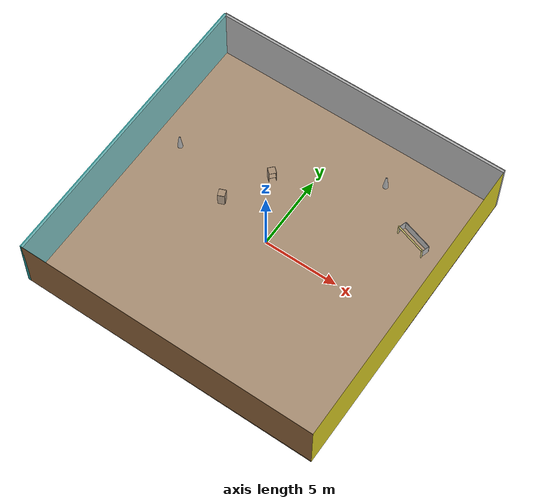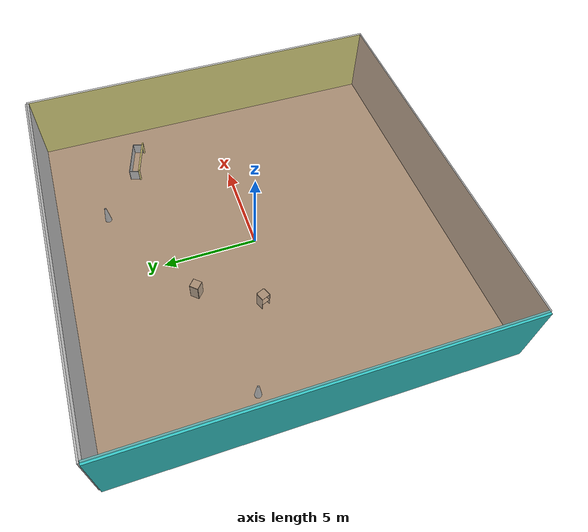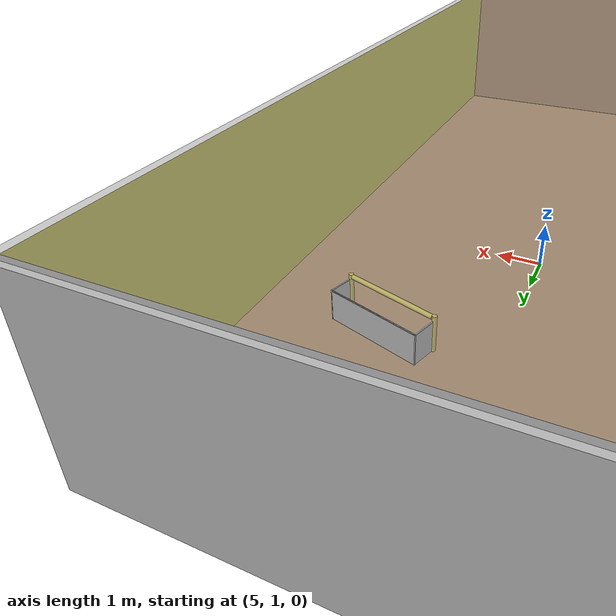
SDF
<sdf version="1.4">
 <world name="default">
  <physics type="ode">
   <max_step_size>0.001</max_step_size>
   <real_time_factor>1</real_time_factor>
   <real_time_update_rate>1000</real_time_update_rate>
   <gravity>0 0 -9.8</gravity>
  </physics>
  <scene><ambient>0.4 0.4 0.4 1</ambient><background>0.7 0.7 0.7 1</background><shadows>1</shadows></scene>
  <model name="Surrounding">
   <static>1</static>
   <link name="Ceiling">
    <collision name="Ceiling_Collision"><geometry><box><size>20 20 0.1</size></box></geometry></collision>
    <visual name="Ceiling_Visual">
     <geometry><box><size>20 20 0.1</size></box></geometry>
     <material>
      <script><uri>file://media/materials/scripts/gazebo.material</uri><name>Gazebo/GreyTransparent</name></script>
     </material>
    </visual>
    <pose>0 0 4.05 0 0 0</pose>
   </link>
   <link name="Wall_South">
    <collision name="Wall_South_Collision">
     <geometry><box><size>20 0 4</size></box></geometry>
     <pose>0 0 2 0 -0 0</pose>
    </collision>
    <visual name="Wall_South_Visual">
     <pose>0 0 2 0 -0 0</pose>
     <geometry><box><size>20 0 4</size></box></geometry>
     <material>
      <script><uri>file://media/materials/scripts/gazebo.material</uri><name>Gazebo/WoodFloor</name></script>
     </material>
    </visual>
    <velocity_decay><linear>0</linear><angular>0</angular></velocity_decay>
    <pose>0 -10 0 0 -0 0</pose>
   </link>
   <link name="Wall_East">
    <collision name="Wall_21_Collision">
     <geometry><box><size>20 0 4</size></box></geometry>
     <pose>0 0 2 0 -0 0</pose>
    </collision>
    <visual name="Wall_21_Visual">
     <pose>0 0 2 0 -0 0</pose>
     <geometry><box><size>20 0 4</size></box></geometry>
     <material>
      <script><uri>file://media/materials/scripts/gazebo.material</uri><name>Gazebo/Yellow</name></script>
     </material>
    </visual>
    <velocity_decay><linear>0</linear><angular>0</angular></velocity_decay>
    <pose>10 0 0 0 -0 1.5708</pose>
   </link>
   <link name="Wall_North">
    <collision name="Wall_22_Collision">
     <geometry><box><size>20 0.2 4</size></box></geometry>
     <pose>0 0 2 0 -0 0</pose>
    </collision>
    <visual name="Wall_22_Visual">
     <pose>0 0 2 0 -0 0</pose>
     <geometry><box><size>20 0.2 4</size></box></geometry>
     <material>
      <script><uri>file://media/materials/scripts/gazebo.material</uri><name>Gazebo/JointAnchor</name></script>
     </material>
    </visual>
    <velocity_decay><linear>0</linear><angular>0</angular></velocity_decay>
    <pose>0 10 0 0 -0 0</pose>
   </link>
   <link name="Wall_West">
    <collision name="Wall_23_Collision">
     <geometry><box><size>20 0.2 4</size></box></geometry>
     <pose>0 0 2 0 -0 0</pose>
    </collision>
    <visual name="Wall_23_Visual">
     <pose>0 0 2 0 -0 0</pose>
     <geometry><box><size>20 0.2 4</size></box></geometry>
     <material>
      <script>
       <uri>file://media/materials/scripts/gazebo.material</uri>
       <name>Gazebo/TurquoiseGlowOutline</name>
      </script>
     </material>
    </visual>
    <velocity_decay><linear>0</linear><angular>0</angular></velocity_decay>
    <pose>-10 0 0 0 0 -1.5708</pose>
   </link>
   <link name="Ground_link">
    <collision name="collision">
     <pose>0 0 .05 0 -0 0</pose>
     <geometry><box><size>20 20 0.1</size></box></geometry>
    </collision>
    <visual name="visual">
     <pose>0 0 .05 0 -0 0</pose>
     <geometry><box><size>20 20 0.1</size></box></geometry>
     <material>
      <script><uri>file://media/materials/scripts/gazebo.material</uri><name>Gazebo/Wood</name></script>
     </material>
    </visual>
   </link>
   <static>1</static>
  </model>
  <spherical_coordinates>
   <surface_model>EARTH_WGS84</surface_model>
   <latitude_deg>0</latitude_deg>
   <longitude_deg>0</longitude_deg>
   <elevation>0</elevation>
   <heading_deg>0</heading_deg>
  </spherical_coordinates>
  <light name="lightball_0" type="diffuse">
   <diffuse>0.8 0.8 0.8 1</diffuse>
   <specular>0.2 0.2 0.2 1</specular>
   <attenuation>
    <range>100</range>
    <constant>0.7</constant>
    <linear>0.01</linear>
    <quadratic>0.001</quadratic>
   </attenuation>
   <direction>-0.5 0.1 -0.9</direction>
   <pose>1.50487340277 -1.09994284031 2.97784608189 0 0 0</pose>
  </light>
  <light name="lightball_1" type="diffuse">
   <diffuse>0.8 0.8 0.8 1</diffuse>
   <specular>0.2 0.2 0.2 1</specular>
   <attenuation>
    <range>100</range>
    <constant>0.7</constant>
    <linear>0.01</linear>
    <quadratic>0.001</quadratic>
   </attenuation>
   <direction>-0.5 0.1 -0.9</direction>
   <pose>-0.0553698381391 -2.66653593388 0.717928023535 0 0 0</pose>
  </light>
  <light name="lightball_2" type="diffuse">
   <diffuse>0.8 0.8 0.8 1</diffuse>
   <specular>0.2 0.2 0.2 1</specular>
   <attenuation>
    <range>100</range>
    <constant>0.7</constant>
    <linear>0.01</linear>
    <quadratic>0.001</quadratic>
   </attenuation>
   <direction>-0.5 0.1 -0.9</direction>
   <pose>-7.22841221488 8.11562173505 1.09111784978 0 0 0</pose>
  </light>
  <light name="lightball_3" type="diffuse">
   <diffuse>0.8 0.8 0.8 1</diffuse>
   <specular>0.2 0.2 0.2 1</specular>
   <attenuation>
    <range>100</range>
    <constant>0.7</constant>
    <linear>0.01</linear>
    <quadratic>0.001</quadratic>
   </attenuation>
   <direction>-0.5 0.1 -0.9</direction>
   <pose>-5.51264891173 -3.25590702105 1.19880472319 0 0 0</pose>
  </light>
  <light name="lightball_4" type="diffuse">
   <diffuse>0.8 0.8 0.8 1</diffuse>
   <specular>0.2 0.2 0.2 1</specular>
   <attenuation>
    <range>100</range>
    <constant>0.7</constant>
    <linear>0.01</linear>
    <quadratic>0.001</quadratic>
   </attenuation>
   <direction>-0.5 0.1 -0.9</direction>
   <pose>-0.996026066315 0.337654251198 0.66385181736 0 0 0</pose>
  </light>
  <light name="lightball_5" type="diffuse">
   <diffuse>0.8 0.8 0.8 1</diffuse>
   <specular>0.2 0.2 0.2 1</specular>
   <attenuation>
    <range>100</range>
    <constant>0.7</constant>
    <linear>0.01</linear>
    <quadratic>0.001</quadratic>
   </attenuation>
   <direction>-0.5 0.1 -0.9</direction>
   <pose>8.31234889044 -1.06709637957 2.22816157509 0 0 0</pose>
  </light>
  <light name="lightball_6" type="diffuse">
   <diffuse>0.8 0.8 0.8 1</diffuse>
   <specular>0.2 0.2 0.2 1</specular>
   <attenuation>
    <range>100</range>
    <constant>0.7</constant>
    <linear>0.01</linear>
    <quadratic>0.001</quadratic>
   </attenuation>
   <direction>-0.5 0.1 -0.9</direction>
   <pose>7.61458536219 -2.99805698263 1.65993454454 0 0 0</pose>
  </light>
  <light name="lightball_7" type="diffuse">
   <diffuse>0.8 0.8 0.8 1</diffuse>
   <specular>0.2 0.2 0.2 1</specular>
   <attenuation>
    <range>100</range>
    <constant>0.7</constant>
    <linear>0.01</linear>
    <quadratic>0.001</quadratic>
   </attenuation>
   <direction>-0.5 0.1 -0.9</direction>
   <pose>1.44757660384 8.86650789856 3.47581139119 0 0 0</pose>
  </light>
  <light name="lightball_8" type="diffuse">
   <diffuse>0.8 0.8 0.8 1</diffuse>
   <specular>0.2 0.2 0.2 1</specular>
   <attenuation>
    <range>100</range>
    <constant>0.7</constant>
    <linear>0.01</linear>
    <quadratic>0.001</quadratic>
   </attenuation>
   <direction>-0.5 0.1 -0.9</direction>
   <pose>7.84801113407 -5.30287219783 3.70530010397 0 0 0</pose>
  </light>
  <light name="lightball_9" type="diffuse">
   <diffuse>0.8 0.8 0.8 1</diffuse>
   <specular>0.2 0.2 0.2 1</specular>
   <attenuation>
    <range>100</range>
    <constant>0.7</constant>
    <linear>0.01</linear>
    <quadratic>0.001</quadratic>
   </attenuation>
   <direction>-0.5 0.1 -0.9</direction>
   <pose>-9.90190483003 -0.356578401182 3.50128895156 0 0 0</pose>
  </light>
  <light name="lightball_10" type="diffuse">
   <diffuse>0.8 0.8 0.8 1</diffuse>
   <specular>0.2 0.2 0.2 1</specular>
   <attenuation>
    <range>100</range>
    <constant>0.7</constant>
    <linear>0.01</linear>
    <quadratic>0.001</quadratic>
   </attenuation>
   <direction>-0.5 0.1 -0.9</direction>
   <pose>-9.32251628436 6.42866413903 3.14168713796 0 0 0</pose>
  </light>
  <light name="lightball_11" type="diffuse">
   <diffuse>0.8 0.8 0.8 1</diffuse>
   <specular>0.2 0.2 0.2 1</specular>
   <attenuation>
    <range>100</range>
    <constant>0.7</constant>
    <linear>0.01</linear>
    <quadratic>0.001</quadratic>
   </attenuation>
   <direction>-0.5 0.1 -0.9</direction>
   <pose>-8.66449557168 4.43045701101 1.62857272223 0 0 0</pose>
  </light>
  <include>
   <uri>model://construction_cone</uri>
   <pose>-8.19244117364 2.51384385214 0 0 0 2.82570453123</pose>
  </include>
  <include><uri>model://cabinet</uri><pose>-3.80181365907 0.813258767987 0 0 0 0.388141526069</pose></include>
  <include><uri>model://cabinet</uri><pose>-2.21728794396 3.81962083086 0 0 0 2.41141837968</pose></include>
  <include>
   <uri>model://construction_cone</uri>
   <pose>3.79464812612 7.28490005894 0 0 0 2.93184209249</pose>
  </include>
  <include>
   <uri>model://robocup_3Dsim_goal</uri>
   <pose>7.15438696829 4.68398038607 0 0 0 1.27062314699</pose>
  </include>
 </world>
</sdf>

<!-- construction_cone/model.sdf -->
<sdf version="1.5">
  <model name="Construction Cone">
    <link name="link">
      <collision name="collision">
        <geometry>
          <mesh>
            <scale>10 10 10</scale>
            <uri>file://isr-testbed/construction_cone/meshes/construction_cone.dae</uri>
          </mesh>
        </geometry>
      </collision>
      <visual name="visual">
        <geometry>
          <mesh>
            <scale>10 10 10</scale>
            <uri>file://isr-testbed/construction_cone/meshes/construction_cone.dae</uri>
          </mesh>
        </geometry>
      </visual>
    </link>
  </model>
</sdf>

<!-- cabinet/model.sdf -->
<sdf version="1.5">
  <model name="cabinet">
    <static>true</static>
    <link name="cabinet_bottom_plate">
      <inertial>
        <pose>0 0 -1 0 0 0</pose>
        <inertia>
          <ixx>2.050000</ixx>
          <ixy>0</ixy>
          <ixz>0</ixz>
          <iyy>2.050000</iyy>
          <iyz>0</iyz>
          <izz>2.050000</izz>
        </inertia>
        <mass>25.000000</mass>
      </inertial>
      <collision name="cabinet_bottom_plate_geom">
        <pose>0 0 0.010000 0 0 0</pose>
        <geometry>
          <box>
            <size>0.450000 0.450000 0.020000</size>
          </box>
        </geometry>
      </collision>
      <visual name="cabinet_bottom_plate_geom_visual">
        <pose>0 0 0.010000 0 0 0</pose>
        <geometry>
          <box>
            <size>0.450000 0.450000 0.020000</size>
          </box>
        </geometry>
        <material>
          <script>
            <uri>model://media/materials/scripts/gazebo.material</uri>
            <name>Gazebo/Wood</name>
          </script>
        </material>
      </visual>
      <collision name="cabinet_bottom_plate_geom_cabinet_back_plate">
        <pose>0.235000 0 0.510000 0 0 0</pose>
        <geometry>
          <box>
            <size>0.020000 0.450000 1.020000</size>
          </box>
        </geometry>
      </collision>
      <visual name="cabinet_bottom_plate_geom_cabinet_back_plate_visual">
        <pose>0.235000 0 0.510000 0 0 0</pose>
        <geometry>
          <box>
            <size>0.020000 0.450000 1.020000</size>
          </box>
        </geometry>
        <material>
          <script>
            <uri>model://media/materials/scripts/gazebo.material</uri>
            <name>Gazebo/Wood</name>
          </script>
        </material>
      </visual>
      <collision name="cabinet_bottom_plate_geom_cabinet_left_plate">
        <pose>0 0.235000 0.510000 0 0 0</pose>
        <geometry>
          <box>
            <size>0.450000 0.020000 1.020000</size>
          </box>
        </geometry>
      </collision>
      <visual name="cabinet_bottom_plate_geom_cabinet_left_plate_visual">
        <pose>0 0.235000 0.510000 0 0 0</pose>
        <geometry>
          <box>
            <size>0.450000 0.020000 1.020000</size>
          </box>
        </geometry>
        <material>
          <script>
            <uri>model://media/materials/scripts/gazebo.material</uri>
            <name>Gazebo/Wood</name>
          </script>
        </material>
      </visual>
      <collision name="cabinet_bottom_plate_geom_cabinet_middle_plate">
        <pose>0 0 0.510000 0 0 0</pose>
        <geometry>
          <box>
            <size>0.450000 0.450000 0.020000</size>
          </box>
        </geometry>
      </collision>
      <visual name="cabinet_bottom_plate_geom_cabinet_middle_plate_visual">
        <pose>0 0 0.510000 0 0 0</pose>
        <geometry>
          <box>
            <size>0.450000 0.450000 0.020000</size>
          </box>
        </geometry>
        <material>
          <script>
            <uri>model://media/materials/scripts/gazebo.material</uri>
            <name>Gazebo/Wood</name>
          </script>
        </material>
      </visual>
      <collision name="cabinet_bottom_plate_geom_cabinet_right_plate">
        <pose>0 -0.235000 0.510000 0 0 0</pose>
        <geometry>
          <box>
            <size>0.450000 0.020000 1.020000</size>
          </box>
        </geometry>
      </collision>
      <visual name="cabinet_bottom_plate_geom_cabinet_right_plate_visual">
        <pose>0 -0.235000 0.510000 0 0 0</pose>
        <geometry>
          <box>
            <size>0.450000 0.020000 1.020000</size>
          </box>
        </geometry>
        <material>
          <script>
            <uri>model://media/materials/scripts/gazebo.material</uri>
            <name>Gazebo/Wood</name>
          </script>
        </material>
      </visual>
      <collision name="cabinet_bottom_plate_geom_cabinet_top_plate">
        <pose>0 0 1.010000 0 0 0</pose>
        <geometry>
          <box>
            <size>0.450000 0.450000 0.020000</size>
          </box>
        </geometry>
      </collision>
      <visual name="cabinet_bottom_plate_geom_cabinet_top_plate_visual">
        <pose>0 0 1.010000 0 0 0</pose>
        <geometry>
          <box>
            <size>0.450000 0.450000 0.020000</size>
          </box>
        </geometry>
        <material>
          <script>
            <uri>model://media/materials/scripts/gazebo.material</uri>
            <name>Gazebo/Wood</name>
          </script>
        </material>
      </visual>
    </link>
  </model>
</sdf>

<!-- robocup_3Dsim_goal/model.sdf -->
<sdf version="1.5">
  <model name="robocup_3d_goal">
    <static>true</static>
    <link name="left_post">
      <pose>0 1.05 0.45 0 0 0</pose>
      <collision name="collision">
        <geometry>
          <cylinder>
            <radius>0.05</radius>
            <length>0.9</length>
          </cylinder>
        </geometry>
      </collision>
      <visual name="visual">
        <geometry>
          <cylinder>
            <radius>0.05</radius>
            <length>0.9</length>
          </cylinder>
        </geometry>
        <material>
          <script>
            <uri>file://media/materials/scripts/gazebo.material</uri>
            <name>Gazebo/ZincYellow</name>
          </script>
        </material>
      </visual>
    </link>
    <link name="left_support_horiz_lower">
      <pose>0.30 1.05 0.01 0 0 0</pose>
      <collision name="collision">
        <geometry>
          <box>
            <size>0.50 0.02 0.02</size>
          </box>
        </geometry>
      </collision>
      <visual name="visual">
        <geometry>
          <box>
            <size>0.50 0.02 0.02</size>
          </box>
        </geometry>
        <material>
          <script>
            <uri>file://media/materials/scripts/gazebo.material</uri>
            <name>Gazebo/White</name>
          </script>
        </material>
      </visual>
    </link>
    <link name="left_support_horiz_upper">
      <pose>0.30 1.05 0.79 0 0 0</pose>
      <collision name="collision">
        <geometry>
          <box>
            <size>0.50 0.02 0.02</size>
          </box>
        </geometry>
      </collision>
      <visual name="visual">
        <geometry>
          <box>
            <size>0.50 0.02 0.02</size>
          </box>
        </geometry>
        <material>
          <script>
            <uri>file://media/materials/scripts/gazebo.material</uri>
            <name>Gazebo/White</name>
          </script>
        </material>
      </visual>
    </link>
    <link name="left_support_vertical">
      <pose>0.56 1.05 0.4 0 1.5708 0</pose>
      <collision name="collision">
        <geometry>
          <box>
            <size>0.80 0.02 0.02</size>
          </box>
        </geometry>
      </collision>
      <visual name="visual">
        <geometry>
          <box>
            <size>0.80 0.02 0.02</size>
          </box>
        </geometry>
        <material>
          <script>
            <uri>file://media/materials/scripts/gazebo.material</uri>
            <name>Gazebo/White</name>
          </script>
        </material>
      </visual>
    </link>
    <link name="right_support_horiz_lower">
      <pose>0.30 -1.05 0.01 0 0 0</pose>
      <collision name="collision">
        <geometry>
          <box>
            <size>0.50 0.02 0.02</size>
          </box>
        </geometry>
      </collision>
      <visual name="visual">
        <geometry>
          <box>
            <size>0.50 0.02 0.02</size>
          </box>
        </geometry>
        <material>
          <script>
            <uri>file://media/materials/scripts/gazebo.material</uri>
            <name>Gazebo/White</name>
          </script>
        </material>
      </visual>
    </link>
    <link name="right_support_horiz_upper">
      <pose>0.30 -1.05 0.79 0 0 0</pose>
      <collision name="collision">
        <geometry>
          <box>
            <size>0.50 0.02 0.02</size>
          </box>
        </geometry>
      </collision>
      <visual name="visual">
        <geometry>
          <box>
            <size>0.50 0.02 0.02</size>
          </box>
        </geometry>
        <material>
          <script>
            <uri>file://media/materials/scripts/gazebo.material</uri>
            <name>Gazebo/White</name>
          </script>
        </material>
      </visual>
    </link>
    <link name="right_support_vertical">
      <pose>0.56 -1.05 0.4 0 1.5708 0</pose>
      <collision name="collision">
        <geometry>
          <box>
            <size>0.80 0.02 0.02</size>
          </box>
        </geometry>
      </collision>
      <visual name="visual">
        <geometry>
          <box>
            <size>0.80 0.02 0.02</size>
          </box>
        </geometry>
        <material>
          <script>
            <uri>file://media/materials/scripts/gazebo.material</uri>
            <name>Gazebo/White</name>
          </script>
        </material>
      </visual>
    </link>
    <link name="center_support_horiz_lower">
      <pose>0.56 0 0.01 0 1.5708 0</pose>
      <collision name="collision">
        <geometry>
          <box>
            <size>0.02 2.08 0.02</size>
          </box>
        </geometry>
      </collision>
      <visual name="visual">
        <geometry>
          <box>
            <size>0.02 2.08 0.02</size>
          </box>
        </geometry>
        <material>
          <script>
            <uri>file://media/materials/scripts/gazebo.material</uri>
            <name>Gazebo/White</name>
          </script>
        </material>
      </visual>
    </link>
    <link name="center_support_horiz_upper">
      <pose>0.56 0 0.79 0 1.5708 0</pose>
      <collision name="collision">
        <geometry>
          <box>
            <size>0.02 2.08 0.02</size>
          </box>
        </geometry>
      </collision>
      <visual name="visual">
        <geometry>
          <box>
            <size>0.02 2.08 0.02</size>
          </box>
        </geometry>
        <material>
          <script>
            <uri>file://media/materials/scripts/gazebo.material</uri>
            <name>Gazebo/White</name>
          </script>
        </material>
      </visual>
    </link>
    <link name="right_post">
      <pose>0 -1.05 0.45 0 0 0</pose>
      <collision name="collision">
        <geometry>
          <cylinder>
            <radius>0.05</radius>
            <length>0.9</length>
          </cylinder>
        </geometry>
      </collision>
      <visual name="visual">
        <geometry>
          <cylinder>
            <radius>0.05</radius>
            <length>0.9</length>
          </cylinder>
        </geometry>
        <material>
          <script>
            <uri>file://media/materials/scripts/gazebo.material</uri>
            <name>Gazebo/ZincYellow</name>
          </script>
        </material>
      </visual>
    </link>
    <link name="crossbar">
      <pose>0 0 0.85 1.57 1.57 0</pose>
      <collision name="collision">
        <geometry>
          <cylinder>
            <radius>0.05</radius>
            <length>2.0</length>
          </cylinder>
        </geometry>
      </collision>
      <visual name="visual">
        <geometry>
          <cylinder>
            <radius>0.05</radius>
            <length>2.0</length>
          </cylinder>
        </geometry>
        <material>
          <script>
            <uri>file://media/materials/scripts/gazebo.material</uri>
            <name>Gazebo/ZincYellow</name>
          </script>
        </material>
      </visual>
    </link>
    <link name="center_net">
      <pose>0.56 0 0.40 0 0 0</pose>
      <collision name="collision">
        <geometry>
          <box>
            <size>0.01 2.1 0.80</size>
          </box>
        </geometry>
      </collision>
      <visual name="visual">
        <geometry>
          <box>
            <size>0.01 2.1 0.80</size>
          </box>
        </geometry>
        <material>
          <script>
            <uri>model://../model_source/models/robocup09_spl_field/materials/scripts/</uri>
            <uri>model://../model_source/models/robocup09_spl_field/materials/textures/</uri>
            <name>RoboCup/Net</name>
          </script>
        </material>
      </visual>
    </link>
    <link name="left_net">
      <pose>0.30 1.05 0.40 0 0 0</pose>
      <collision name="collision">
        <geometry>
          <box>
            <size>0.50 0.01 0.76</size>
          </box>
        </geometry>
      </collision>
      <visual name="visual">
        <geometry>
          <box>
            <size>0.50 0.01 0.76</size>
          </box>
        </geometry>
        <material>
          <script>
            <uri>model://../model_source/models/robocup09_spl_field/materials/scripts/</uri>
            <uri>model://../model_source/models/robocup09_spl_field/materials/textures/</uri>
            <name>RoboCup/Net</name>
          </script>
        </material>
      </visual>
    </link>
    <link name="right_net">
      <pose>0.30 -1.05 0.40 0 0 0</pose>
      <collision name="collision">
        <geometry>
          <box>
            <size>0.50 0.01 0.76</size>
          </box>
        </geometry>
      </collision>
      <visual name="visual">
        <geometry>
          <box>
            <size>0.50 0.01 0.76</size>
          </box>
        </geometry>
        <material>
          <script>
            <uri>model://../model_source/models/robocup09_spl_field/materials/scripts/</uri>
            <uri>model://../model_source/models/robocup09_spl_field/materials/textures/</uri>
            <name>RoboCup/Net</name>
          </script>
        </material>
      </visual>
    </link>
  </model>
</sdf>
